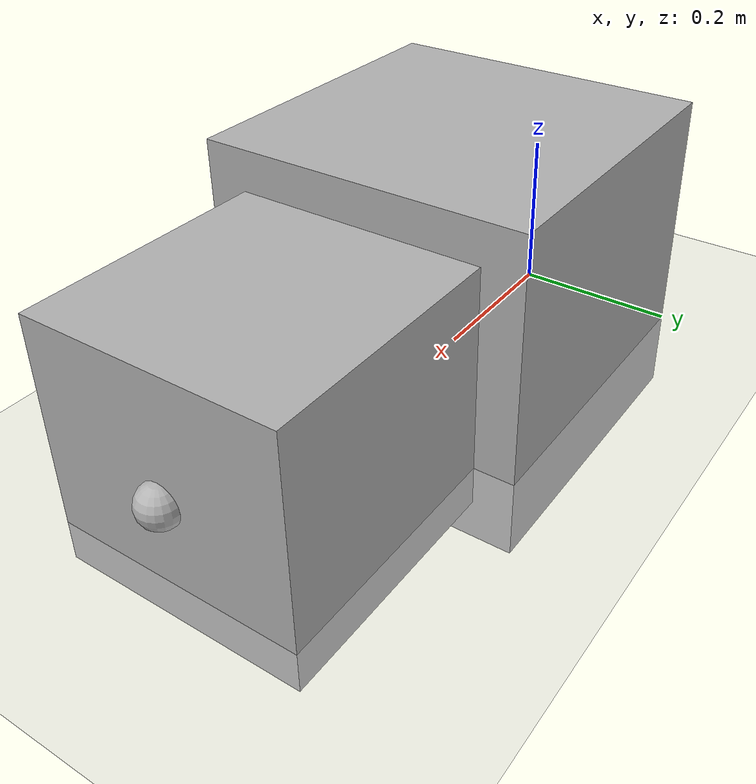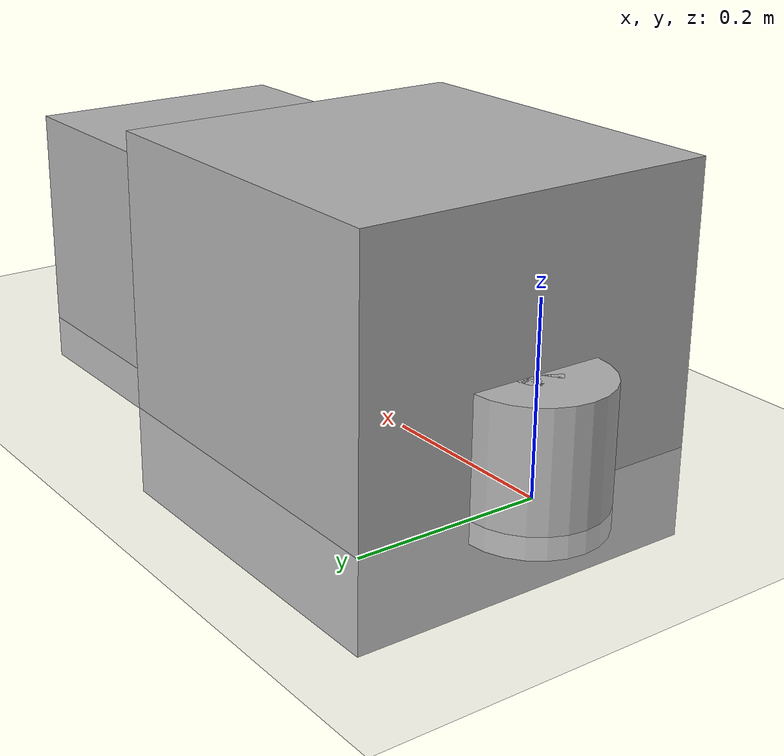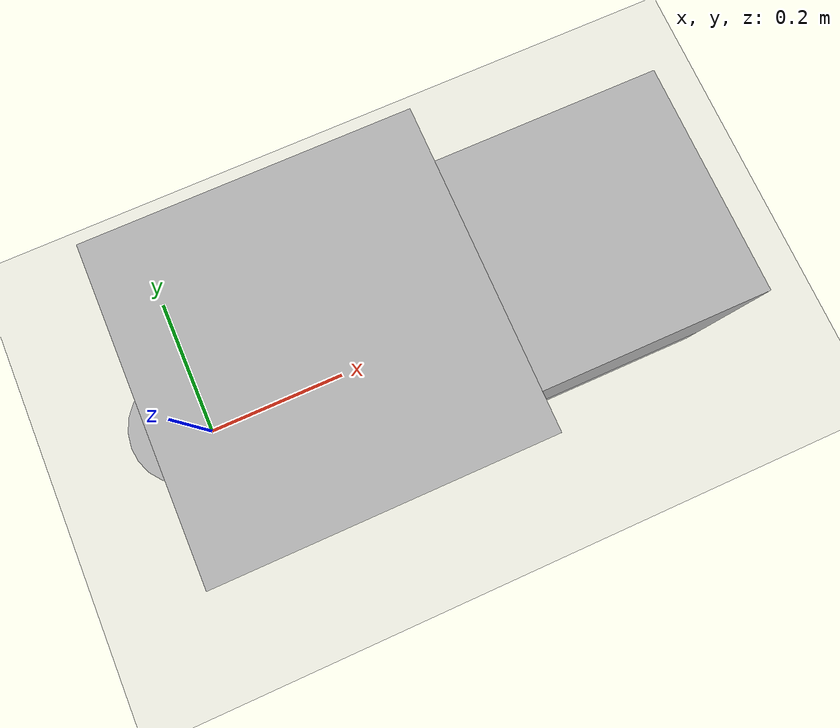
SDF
<?xml version="1.0"?>
<!-- Auto-generated by HoloScript SDFCompiler -->
<!-- Source: composition "TwoDoFRobotArm" -->

<sdf version="1.8">
  <world name="HoloScriptRobotWorld">
    <physics name="default_physics" type="ode">
      <max_step_size>0.001</max_step_size>
      <real_time_factor>1</real_time_factor>
      <real_time_update_rate>1000</real_time_update_rate>
      <ode>
        <solver>
          <type>quick</type>
          <iters>50</iters>
          <sor>1.3</sor>
        </solver>
        <constraints>
          <cfm>0</cfm>
          <erp>0.2</erp>
        </constraints>
      </ode>
    </physics>

    <scene>
      <ambient>0.4 0.4 0.4 1</ambient>
      <background>0.7 0.7 0.7 1</background>
      <shadows>true</shadows>
    </scene>

    <model name="ground_plane">
      <static>true</static>
      <link name="link">
        <collision name="collision">
          <geometry>
            <plane>
              <normal>0 0 1</normal>
              <size>100 100</size>
            </plane>
          </geometry>
        </collision>
        <visual name="visual">
          <geometry>
            <plane>
              <normal>0 0 1</normal>
              <size>100 100</size>
            </plane>
          </geometry>
          <material>
            <ambient>0.8 0.8 0.8 1</ambient>
            <diffuse>0.8 0.8 0.8 1</diffuse>
          </material>
        </visual>
      </link>
    </model>

    <light name="sun" type="directional">
      <cast_shadows>true</cast_shadows>
      <pose>0 0 10 0 0 0</pose>
      <diffuse>0.8 0.8 0.8 1</diffuse>
      <specular>0.2 0.2 0.2 1</specular>
      <direction>-0.5 0.1 -0.9</direction>
    </light>

    <model name="base">
      <pose>0 0 0.05 0 0 0</pose>
      <link name="base_link">
        <inertial>
          <mass>10</mass>
          <inertia>
            <ixx>1</ixx><ixy>0</ixy><ixz>0</ixz>
            <iyy>1</iyy><iyz>0</iyz>
            <izz>1</izz>
          </inertia>
        </inertial>
        <collision name="collision">
          <geometry>
            <cylinder><radius>0.075</radius><length>0.15</length></cylinder>
          </geometry>
        </collision>
        <visual name="visual">
          <geometry>
            <cylinder><radius>0.075</radius><length>0.15</length></cylinder>
          </geometry>
          <material>
            <ambient>0.7 0.7 0.7 1</ambient>
            <diffuse>0.7 0.7 0.7 1</diffuse>
          </material>
        </visual>
      </link>
    </model>

    <model name="shoulderjoint">
      <pose>0 0 0.1 0 0 0</pose>
      <link name="shoulderjoint_link">
        <inertial>
          <mass>0.5</mass>
          <inertia>
            <ixx>0.05</ixx><ixy>0</ixy><ixz>0</ixz>
            <iyy>0.05</iyy><iyz>0</iyz>
            <izz>0.05</izz>
          </inertia>
        </inertial>
        <collision name="collision">
          <geometry>
            <cylinder><radius>0.025</radius><length>0.05</length></cylinder>
          </geometry>
        </collision>
        <visual name="visual">
          <geometry>
            <cylinder><radius>0.025</radius><length>0.05</length></cylinder>
          </geometry>
          <material>
            <ambient>0.7 0.7 0.7 1</ambient>
            <diffuse>0.7 0.7 0.7 1</diffuse>
          </material>
        </visual>
      </link>
    </model>

    <model name="upperarm">
      <pose>0.2 0 0.1 0 0 0</pose>
      <link name="upperarm_link">
        <inertial>
          <mass>2</mass>
          <inertia>
            <ixx>0.2</ixx><ixy>0</ixy><ixz>0</ixz>
            <iyy>0.2</iyy><iyz>0</iyz>
            <izz>0.2</izz>
          </inertia>
        </inertial>
        <collision name="collision">
          <geometry>
            <box><size>0.4 0.4 0.4</size></box>
          </geometry>
        </collision>
        <visual name="visual">
          <geometry>
            <box><size>0.4 0.4 0.4</size></box>
          </geometry>
          <material>
            <ambient>0.7 0.7 0.7 1</ambient>
            <diffuse>0.7 0.7 0.7 1</diffuse>
          </material>
        </visual>
      </link>
    </model>

    <model name="elbowjoint">
      <pose>0.4 0 0.1 0 0 0</pose>
      <link name="elbowjoint_link">
        <inertial>
          <mass>0.3</mass>
          <inertia>
            <ixx>0.03</ixx><ixy>0</ixy><ixz>0</ixz>
            <iyy>0.03</iyy><iyz>0</iyz>
            <izz>0.03</izz>
          </inertia>
        </inertial>
        <collision name="collision">
          <geometry>
            <cylinder><radius>0.02</radius><length>0.04</length></cylinder>
          </geometry>
        </collision>
        <visual name="visual">
          <geometry>
            <cylinder><radius>0.02</radius><length>0.04</length></cylinder>
          </geometry>
          <material>
            <ambient>0.7 0.7 0.7 1</ambient>
            <diffuse>0.7 0.7 0.7 1</diffuse>
          </material>
        </visual>
      </link>
    </model>

    <model name="forearm">
      <pose>0.55 0 0.1 0 0 0</pose>
      <link name="forearm_link">
        <inertial>
          <mass>1</mass>
          <inertia>
            <ixx>0.1</ixx><ixy>0</ixy><ixz>0</ixz>
            <iyy>0.1</iyy><iyz>0</iyz>
            <izz>0.1</izz>
          </inertia>
        </inertial>
        <collision name="collision">
          <geometry>
            <box><size>0.3 0.3 0.3</size></box>
          </geometry>
        </collision>
        <visual name="visual">
          <geometry>
            <box><size>0.3 0.3 0.3</size></box>
          </geometry>
          <material>
            <ambient>0.7 0.7 0.7 1</ambient>
            <diffuse>0.7 0.7 0.7 1</diffuse>
          </material>
        </visual>
      </link>
    </model>

    <model name="endeffector">
      <pose>0.7 0 0.1 0 0 0</pose>
      <link name="endeffector_link">
        <inertial>
          <mass>0.2</mass>
          <inertia>
            <ixx>0.020000000000000004</ixx><ixy>0</ixy><ixz>0</ixz>
            <iyy>0.020000000000000004</iyy><iyz>0</iyz>
            <izz>0.020000000000000004</izz>
          </inertia>
        </inertial>
        <collision name="collision">
          <geometry>
            <sphere><radius>0.025</radius></sphere>
          </geometry>
        </collision>
        <visual name="visual">
          <geometry>
            <sphere><radius>0.025</radius></sphere>
          </geometry>
          <material>
            <ambient>0.7 0.7 0.7 1</ambient>
            <diffuse>0.7 0.7 0.7 1</diffuse>
          </material>
        </visual>
      </link>
    </model>

  </world>
</sdf>
